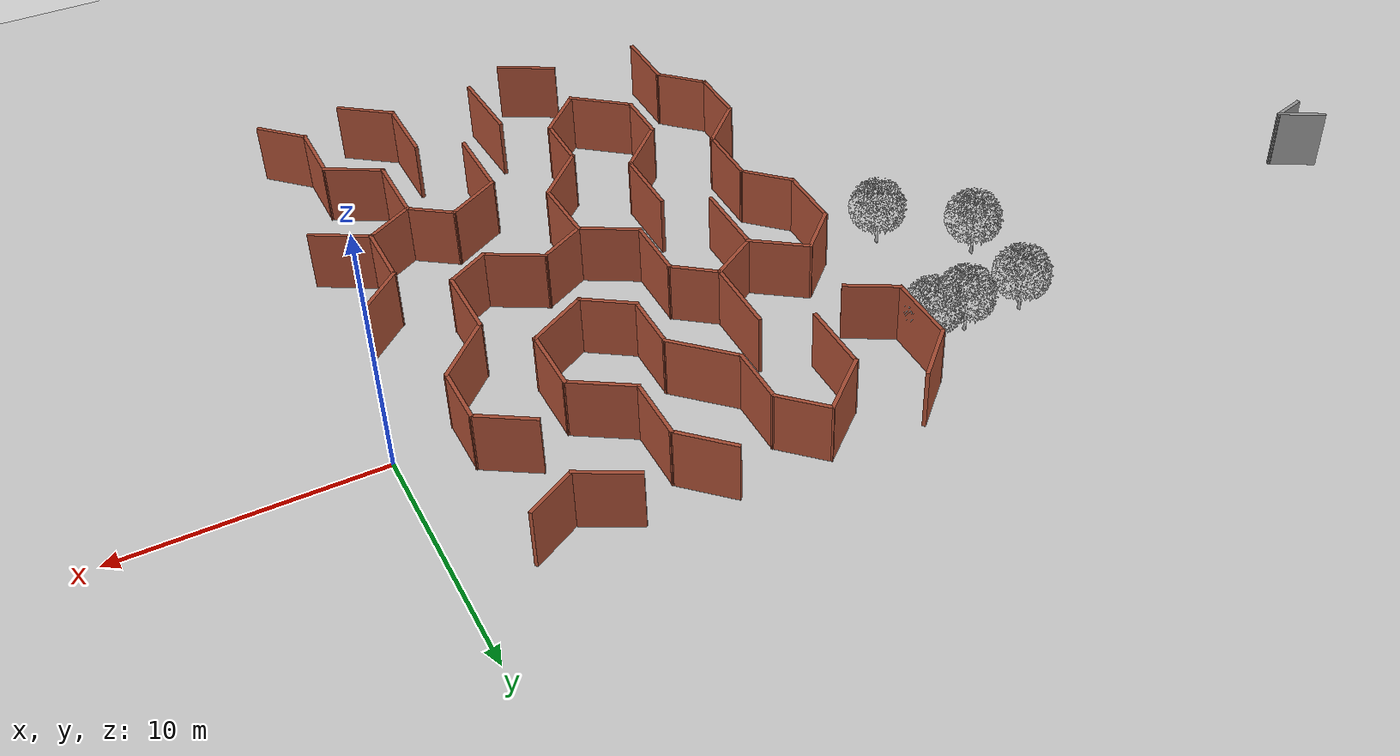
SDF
<sdf version="1.6">
 <world name="default">
  <model name="maze_rect_3">
   <pose>4e-06 -9.9e-05 0 0 -0 1.57001</pose>
   <link name="Wall_397">
    <collision name="Wall_397_Collision">
     <geometry><box><size>2.42901 0.15 2.5</size></box></geometry>
     <pose>0 0 1.25 0 -0 0</pose>
    </collision>
    <visual name="Wall_397_Visual">
     <pose>0 0 1.25 0 -0 0</pose>
     <geometry><box><size>2.42901 0.15 2.5</size></box></geometry>
     <material>
      <script><uri>file://media/materials/scripts/gazebo.material</uri><name>Gazebo/Bricks</name></script>
      <ambient>1 1 1 1</ambient>
     </material>
     <meta><layer>0</layer></meta>
    </visual>
    <pose>2.16247 3.50043 0 0 -0 -2.14324</pose>
   </link>
   <link name="Wall_408">
    <collision name="Wall_408_Collision">
     <geometry><box><size>2.25 0.15 2.5</size></box></geometry>
     <pose>0 0 1.25 0 -0 0</pose>
    </collision>
    <visual name="Wall_408_Visual">
     <pose>0 0 1.25 0 -0 0</pose>
     <geometry><box><size>2.25 0.15 2.5</size></box></geometry>
     <material>
      <script><uri>file://media/materials/scripts/gazebo.material</uri><name>Gazebo/Bricks</name></script>
      <ambient>1 1 1 1</ambient>
     </material>
     <meta><layer>0</layer></meta>
    </visual>
    <pose>6.22436 12.7556 0 0 -0 -2.35619</pose>
   </link>
   <link name="Wall_409">
    <collision name="Wall_409_Collision">
     <geometry><box><size>2.5 0.15 2.5</size></box></geometry>
     <pose>0 0 1.25 0 -0 0</pose>
    </collision>
    <visual name="Wall_409_Visual">
     <pose>0 0 1.25 0 -0 0</pose>
     <geometry><box><size>2.5 0.15 2.5</size></box></geometry>
     <material>
      <script><uri>file://media/materials/scripts/gazebo.material</uri><name>Gazebo/Bricks</name></script>
      <ambient>1 1 1 1</ambient>
     </material>
     <meta><layer>0</layer></meta>
    </visual>
    <pose>4.3069 12.0131 0 0 -0 3.14159</pose>
   </link>
   <link name="Wall_410">
    <collision name="Wall_410_Collision">
     <geometry><box><size>3 0.15 2.5</size></box></geometry>
     <pose>0 0 1.25 0 -0 0</pose>
    </collision>
    <visual name="Wall_410_Visual">
     <pose>0 0 1.25 0 -0 0</pose>
     <geometry><box><size>3 0.15 2.5</size></box></geometry>
     <material>
      <script><uri>file://media/materials/scripts/gazebo.material</uri><name>Gazebo/Bricks</name></script>
      <ambient>1 1 1 1</ambient>
     </material>
     <meta><layer>0</layer></meta>
    </visual>
    <pose>2.12428 11.0055 0 0 -0 -2.35619</pose>
   </link>
   <link name="Wall_411">
    <collision name="Wall_411_Collision">
     <geometry><box><size>2.5 0.15 2.5</size></box></geometry>
     <pose>0 0 1.25 0 -0 0</pose>
    </collision>
    <visual name="Wall_411_Visual">
     <pose>0 0 1.25 0 -0 0</pose>
     <geometry><box><size>2.5 0.15 2.5</size></box></geometry>
     <material>
      <script><uri>file://media/materials/scripts/gazebo.material</uri><name>Gazebo/Bricks</name></script>
      <ambient>1 1 1 1</ambient>
     </material>
     <meta><layer>0</layer></meta>
    </visual>
    <pose>-0.058351 9.99786 0 0 -0 3.14159</pose>
   </link>
   <link name="Wall_412">
    <collision name="Wall_412_Collision">
     <geometry><box><size>2.274 0.15 2.5</size></box></geometry>
     <pose>0 0 1.25 0 -0 0</pose>
    </collision>
    <visual name="Wall_412_Visual">
     <pose>0 0 1.25 0 -0 0</pose>
     <geometry><box><size>2.274 0.15 2.5</size></box></geometry>
     <material>
      <script><uri>file://media/materials/scripts/gazebo.material</uri><name>Gazebo/Bricks</name></script>
      <ambient>1 1 1 1</ambient>
     </material>
     <meta><layer>0</layer></meta>
    </visual>
    <pose>-1.83906 9.12552 0 0 -0 -2.17772</pose>
   </link>
   <link name="Wall_413">
    <collision name="Wall_413_Collision">
     <geometry><box><size>2.75 0.15 2.5</size></box></geometry>
     <pose>0 0 1.25 0 -0 0</pose>
    </collision>
    <visual name="Wall_413_Visual">
     <pose>0 0 1.25 0 -0 0</pose>
     <geometry><box><size>2.75 0.15 2.5</size></box></geometry>
     <material>
      <script><uri>file://media/materials/scripts/gazebo.material</uri><name>Gazebo/Bricks</name></script>
      <ambient>1 1 1 1</ambient>
     </material>
     <meta><layer>0</layer></meta>
    </visual>
    <pose>-1.79476 7.12736 0 0 -0 -1.0472</pose>
   </link>
   <link name="Wall_414">
    <collision name="Wall_414_Collision">
     <geometry><box><size>2.75 0.15 2.5</size></box></geometry>
     <pose>0 0 1.25 0 -0 0</pose>
    </collision>
    <visual name="Wall_414_Visual">
     <pose>0 0 1.25 0 -0 0</pose>
     <geometry><box><size>2.75 0.15 2.5</size></box></geometry>
     <material>
      <script><uri>file://media/materials/scripts/gazebo.material</uri><name>Gazebo/Bricks</name></script>
      <ambient>1 1 1 1</ambient>
     </material>
     <meta><layer>0</layer></meta>
    </visual>
    <pose>0.155242 6.00152 0 0 -0 0</pose>
   </link>
   <link name="Wall_415">
    <collision name="Wall_415_Collision">
     <geometry><box><size>2.72023 0.15 2.5</size></box></geometry>
     <pose>0 0 1.25 0 -0 0</pose>
    </collision>
    <visual name="Wall_415_Visual">
     <pose>0 0 1.25 0 -0 0</pose>
     <geometry><box><size>2.72023 0.15 2.5</size></box></geometry>
     <material>
      <script><uri>file://media/materials/scripts/gazebo.material</uri><name>Gazebo/Bricks</name></script>
      <ambient>1 1 1 1</ambient>
     </material>
     <meta><layer>0</layer></meta>
    </visual>
    <pose>2.15341 7.08045 0 0 -0 0.996468</pose>
   </link>
   <link name="Wall_416">
    <collision name="Wall_416_Collision">
     <geometry><box><size>2.75 0.15 2.5</size></box></geometry>
     <pose>0 0 1.25 0 -0 0</pose>
    </collision>
    <visual name="Wall_416_Visual">
     <pose>0 0 1.25 0 -0 0</pose>
     <geometry><box><size>2.75 0.15 2.5</size></box></geometry>
     <material>
      <script><uri>file://media/materials/scripts/gazebo.material</uri><name>Gazebo/Bricks</name></script>
      <ambient>1 1 1 1</ambient>
     </material>
     <meta><layer>0</layer></meta>
    </visual>
    <pose>4.15157 8.15938 0 0 -0 0</pose>
   </link>
   <link name="Wall_417">
    <collision name="Wall_417_Collision">
     <geometry><box><size>2.5 0.15 2.5</size></box></geometry>
     <pose>0 0 1.25 0 -0 0</pose>
    </collision>
    <visual name="Wall_417_Visual">
     <pose>0 0 1.25 0 -0 0</pose>
     <geometry><box><size>2.5 0.15 2.5</size></box></geometry>
     <material>
      <script><uri>file://media/materials/scripts/gazebo.material</uri><name>Gazebo/Bricks</name></script>
      <ambient>1 1 1 1</ambient>
     </material>
     <meta><layer>0</layer></meta>
    </visual>
    <pose>6.28242 8.99023 0 0 -0 0.785398</pose>
   </link>
   <link name="Wall_428">
    <collision name="Wall_428_Collision">
     <geometry><box><size>3 0.15 2.5</size></box></geometry>
     <pose>0 0 1.25 0 -0 0</pose>
    </collision>
    <visual name="Wall_428_Visual">
     <pose>0 0 1.25 0 -0 0</pose>
     <geometry><box><size>3 0.15 2.5</size></box></geometry>
     <material>
      <script><uri>file://media/materials/scripts/gazebo.material</uri><name>Gazebo/Bricks</name></script>
      <ambient>1 1 1 1</ambient>
     </material>
     <meta><layer>0</layer></meta>
    </visual>
    <pose>3.83443 15.4086 0 0 -0 0</pose>
   </link>
   <link name="Wall_429">
    <collision name="Wall_429_Collision">
     <geometry><box><size>2.7123 0.15 2.5</size></box></geometry>
     <pose>0 0 1.25 0 -0 0</pose>
    </collision>
    <visual name="Wall_429_Visual">
     <pose>0 0 1.25 0 -0 0</pose>
     <geometry><box><size>2.7123 0.15 2.5</size></box></geometry>
     <material>
      <script><uri>file://media/materials/scripts/gazebo.material</uri><name>Gazebo/Bricks</name></script>
      <ambient>1 1 1 1</ambient>
     </material>
     <meta><layer>0</layer></meta>
    </visual>
    <pose>6.11313 14.4533 0 0 -0 -0.841487</pose>
   </link>
   <link name="Wall_488">
    <collision name="Wall_488_Collision">
     <geometry><box><size>2.25 0.15 2.5</size></box></geometry>
     <pose>0 0 1.25 0 -0 0</pose>
    </collision>
    <visual name="Wall_488_Visual">
     <pose>0 0 1.25 0 -0 0</pose>
     <geometry><box><size>2.25 0.15 2.5</size></box></geometry>
     <material>
      <script><uri>file://media/materials/scripts/gazebo.material</uri><name>Gazebo/Bricks</name></script>
      <ambient>1 1 1 1</ambient>
     </material>
     <meta><layer>0</layer></meta>
    </visual>
    <pose>-18.1705 1.86878 0 0 -0 0.785398</pose>
   </link>
   <link name="Wall_489">
    <collision name="Wall_489_Collision">
     <geometry><box><size>2.75 0.15 2.5</size></box></geometry>
     <pose>0 0 1.25 0 -0 0</pose>
    </collision>
    <visual name="Wall_489_Visual">
     <pose>0 0 1.25 0 -0 0</pose>
     <geometry><box><size>2.75 0.15 2.5</size></box></geometry>
     <material>
      <script><uri>file://media/materials/scripts/gazebo.material</uri><name>Gazebo/Bricks</name></script>
      <ambient>1 1 1 1</ambient>
     </material>
     <meta><layer>0</layer></meta>
    </visual>
    <pose>-16.1281 2.61124 0 0 -0 0</pose>
   </link>
   <link name="Wall_490">
    <collision name="Wall_490_Collision">
     <geometry><box><size>2.5 0.15 2.5</size></box></geometry>
     <pose>0 0 1.25 0 -0 0</pose>
    </collision>
    <visual name="Wall_490_Visual">
     <pose>0 0 1.25 0 -0 0</pose>
     <geometry><box><size>2.5 0.15 2.5</size></box></geometry>
     <material>
      <script><uri>file://media/materials/scripts/gazebo.material</uri><name>Gazebo/Bricks</name></script>
      <ambient>1 1 1 1</ambient>
     </material>
     <meta><layer>0</layer></meta>
    </visual>
    <pose>-14.2406 3.62882 0 0 -0 1.0472</pose>
   </link>
   <link name="Wall_491">
    <collision name="Wall_491_Collision">
     <geometry><box><size>3.09032 0.15 2.5</size></box></geometry>
     <pose>0 0 1.25 0 -0 0</pose>
    </collision>
    <visual name="Wall_491_Visual">
     <pose>0 0 1.25 0 -0 0</pose>
     <geometry><box><size>3.09032 0.15 2.5</size></box></geometry>
     <material>
      <script><uri>file://media/materials/scripts/gazebo.material</uri><name>Gazebo/Bricks</name></script>
      <ambient>1 1 1 1</ambient>
     </material>
     <meta><layer>0</layer></meta>
    </visual>
    <pose>-12.1829 4.63645 0 0 -0 -0.00677</pose>
   </link>
   <link name="Wall_492">
    <collision name="Wall_492_Collision">
     <geometry><box><size>2.25 0.15 2.5</size></box></geometry>
     <pose>0 0 1.25 0 -0 0</pose>
    </collision>
    <visual name="Wall_492_Visual">
     <pose>0 0 1.25 0 -0 0</pose>
     <geometry><box><size>2.25 0.15 2.5</size></box></geometry>
     <material>
      <script><uri>file://media/materials/scripts/gazebo.material</uri><name>Gazebo/Bricks</name></script>
      <ambient>1 1 1 1</ambient>
     </material>
     <meta><layer>0</layer></meta>
    </visual>
    <pose>-10.1878 3.71717 0 0 -0 -1.0472</pose>
   </link>
   <link name="Wall_493">
    <collision name="Wall_493_Collision">
     <geometry><box><size>2.75 0.15 2.5</size></box></geometry>
     <pose>0 0 1.25 0 -0 0</pose>
    </collision>
    <visual name="Wall_493_Visual">
     <pose>0 0 1.25 0 -0 0</pose>
     <geometry><box><size>2.75 0.15 2.5</size></box></geometry>
     <material>
      <script><uri>file://media/materials/scripts/gazebo.material</uri><name>Gazebo/Bricks</name></script>
      <ambient>1 1 1 1</ambient>
     </material>
     <meta><layer>0</layer></meta>
    </visual>
    <pose>-8.36282 2.80784 0 0 -0 0</pose>
   </link>
   <link name="Wall_494">
    <collision name="Wall_494_Collision">
     <geometry><box><size>2.26522 0.15 2.5</size></box></geometry>
     <pose>0 0 1.25 0 -0 0</pose>
    </collision>
    <visual name="Wall_494_Visual">
     <pose>0 0 1.25 0 -0 0</pose>
     <geometry><box><size>2.26522 0.15 2.5</size></box></geometry>
     <material>
      <script><uri>file://media/materials/scripts/gazebo.material</uri><name>Gazebo/Bricks</name></script>
      <ambient>1 1 1 1</ambient>
     </material>
     <meta><layer>0</layer></meta>
    </visual>
    <pose>-6.35539 2.02165 0 0 -0 -0.838084</pose>
   </link>
   <link name="Wall_498">
    <collision name="Wall_498_Collision">
     <geometry><box><size>2.52361 0.15 2.5</size></box></geometry>
     <pose>0 0 1.25 0 -0 0</pose>
    </collision>
    <visual name="Wall_498_Visual">
     <pose>0 0 1.25 0 -0 0</pose>
     <geometry><box><size>2.52361 0.15 2.5</size></box></geometry>
     <material>
      <script><uri>file://media/materials/scripts/gazebo.material</uri><name>Gazebo/Bricks</name></script>
      <ambient>1 1 1 1</ambient>
     </material>
     <meta><layer>0</layer></meta>
    </visual>
    <pose>-10.2689 1.78745 0 0 -0 1.03485</pose>
   </link>
   <link name="Wall_508">
    <collision name="Wall_508_Collision">
     <geometry><box><size>3.25 0.15 2.5</size></box></geometry>
     <pose>0 0 1.25 0 -0 0</pose>
    </collision>
    <visual name="Wall_508_Visual">
     <pose>0 0 1.25 0 -0 0</pose>
     <geometry><box><size>3.25 0.15 2.5</size></box></geometry>
     <material>
      <script><uri>file://media/materials/scripts/gazebo.material</uri><name>Gazebo/Bricks</name></script>
      <ambient>1 1 1 1</ambient>
     </material>
     <meta><layer>0</layer></meta>
    </visual>
    <pose>-4.18738 15.3235 0 0 -0 0</pose>
   </link>
   <link name="Wall_510">
    <collision name="Wall_510_Collision">
     <geometry><box><size>3.25 0.15 2.5</size></box></geometry>
     <pose>0 0 1.25 0 -0 0</pose>
    </collision>
    <visual name="Wall_510_Visual">
     <pose>0 0 1.25 0 -0 0</pose>
     <geometry><box><size>3.25 0.15 2.5</size></box></geometry>
     <material>
      <script><uri>file://media/materials/scripts/gazebo.material</uri><name>Gazebo/Bricks</name></script>
      <ambient>1 1 1 1</ambient>
     </material>
     <meta><layer>0</layer></meta>
    </visual>
    <pose>0.103697 13.5095 0 0 -0 3.14159</pose>
   </link>
   <link name="Wall_512">
    <collision name="Wall_512_Collision">
     <geometry><box><size>3 0.15 2.5</size></box></geometry>
     <pose>0 0 1.25 0 -0 0</pose>
    </collision>
    <visual name="Wall_512_Visual">
     <pose>0 0 1.25 0 -0 0</pose>
     <geometry><box><size>3 0.15 2.5</size></box></geometry>
     <material>
      <script><uri>file://media/materials/scripts/gazebo.material</uri><name>Gazebo/Bricks</name></script>
      <ambient>1 1 1 1</ambient>
     </material>
     <meta><layer>0</layer></meta>
    </visual>
    <pose>-7.95217 13.5465 0 0 -0 3.14159</pose>
   </link>
   <link name="Wall_513">
    <collision name="Wall_513_Collision">
     <geometry><box><size>2.75 0.15 2.5</size></box></geometry>
     <pose>0 0 1.25 0 -0 0</pose>
    </collision>
    <visual name="Wall_513_Visual">
     <pose>0 0 1.25 0 -0 0</pose>
     <geometry><box><size>2.75 0.15 2.5</size></box></geometry>
     <material>
      <script><uri>file://media/materials/scripts/gazebo.material</uri><name>Gazebo/Bricks</name></script>
      <ambient>1 1 1 1</ambient>
     </material>
     <meta><layer>0</layer></meta>
    </visual>
    <pose>-10.2964 14.4658 0 0 -0 2.35619</pose>
   </link>
   <link name="Wall_514">
    <collision name="Wall_514_Collision">
     <geometry><box><size>2.25 0.15 2.5</size></box></geometry>
     <pose>0 0 1.25 0 -0 0</pose>
    </collision>
    <visual name="Wall_514_Visual">
     <pose>0 0 1.25 0 -0 0</pose>
     <geometry><box><size>2.25 0.15 2.5</size></box></geometry>
     <material>
      <script><uri>file://media/materials/scripts/gazebo.material</uri><name>Gazebo/Bricks</name></script>
      <ambient>1 1 1 1</ambient>
     </material>
     <meta><layer>0</layer></meta>
    </visual>
    <pose>-12.2656 15.385 0 0 -0 3.14159</pose>
   </link>
   <link name="Wall_515">
    <collision name="Wall_515_Collision">
     <geometry><box><size>2.75234 0.15 2.5</size></box></geometry>
     <pose>0 0 1.25 0 -0 0</pose>
    </collision>
    <visual name="Wall_515_Visual">
     <pose>0 0 1.25 0 -0 0</pose>
     <geometry><box><size>2.75234 0.15 2.5</size></box></geometry>
     <material>
      <script><uri>file://media/materials/scripts/gazebo.material</uri><name>Gazebo/Bricks</name></script>
      <ambient>1 1 1 1</ambient>
     </material>
     <meta><layer>0</layer></meta>
    </visual>
    <pose>-14.1389 14.3774 0 0 -0 -2.25583</pose>
   </link>
   <link name="Wall_516">
    <collision name="Wall_516_Collision">
     <geometry><box><size>2.5 0.15 2.5</size></box></geometry>
     <pose>0 0 1.25 0 -0 0</pose>
    </collision>
    <visual name="Wall_516_Visual">
     <pose>0 0 1.25 0 -0 0</pose>
     <geometry><box><size>2.5 0.15 2.5</size></box></geometry>
     <material>
      <script><uri>file://media/materials/scripts/gazebo.material</uri><name>Gazebo/Bricks</name></script>
      <ambient>1 1 1 1</ambient>
     </material>
     <meta><layer>0</layer></meta>
    </visual>
    <pose>-14.1313 12.5389 0 0 -0 -0.785398</pose>
   </link>
   <link name="Wall_517">
    <collision name="Wall_517_Collision">
     <geometry><box><size>2.46958 0.15 2.5</size></box></geometry>
     <pose>0 0 1.25 0 -0 0</pose>
    </collision>
    <visual name="Wall_517_Visual">
     <pose>0 0 1.25 0 -0 0</pose>
     <geometry><box><size>2.46958 0.15 2.5</size></box></geometry>
     <material>
      <script><uri>file://media/materials/scripts/gazebo.material</uri><name>Gazebo/Bricks</name></script>
      <ambient>1 1 1 1</ambient>
     </material>
     <meta><layer>0</layer></meta>
    </visual>
    <pose>-12.1254 11.7081 0 0 -0 0</pose>
   </link>
   <link name="Wall_518">
    <collision name="Wall_518_Collision">
     <geometry><box><size>2.75 0.15 2.5</size></box></geometry>
     <pose>0 0 1.25 0 -0 0</pose>
    </collision>
    <visual name="Wall_518_Visual">
     <pose>0 0 1.25 0 -0 0</pose>
     <geometry><box><size>2.75 0.15 2.5</size></box></geometry>
     <material>
      <script><uri>file://media/materials/scripts/gazebo.material</uri><name>Gazebo/Bricks</name></script>
      <ambient>1 1 1 1</ambient>
     </material>
     <meta><layer>0</layer></meta>
    </visual>
    <pose>-10.0464 10.7888 0 0 -0 -0.785398</pose>
   </link>
   <link name="Wall_519">
    <collision name="Wall_519_Collision">
     <geometry><box><size>2.88225 0.15 2.5</size></box></geometry>
     <pose>0 0 1.25 0 -0 0</pose>
    </collision>
    <visual name="Wall_519_Visual">
     <pose>0 0 1.25 0 -0 0</pose>
     <geometry><box><size>2.88225 0.15 2.5</size></box></geometry>
     <material>
      <script><uri>file://media/materials/scripts/gazebo.material</uri><name>Gazebo/Bricks</name></script>
      <ambient>1 1 1 1</ambient>
     </material>
     <meta><layer>0</layer></meta>
    </visual>
    <pose>-7.76197 9.91991 0 0 -0 0.036844</pose>
   </link>
   <link name="Wall_64">
    <collision name="Wall_64_Collision">
     <geometry><box><size>2.75 0.15 2.5</size></box></geometry>
     <pose>0 0 1.25 0 -0 0</pose>
    </collision>
    <visual name="Wall_64_Visual">
     <pose>0 0 1.25 0 -0 0</pose>
     <geometry><box><size>2.75 0.15 2.5</size></box></geometry>
     <material>
      <script><uri>file://media/materials/scripts/gazebo.material</uri><name>Gazebo/Bricks</name></script>
      <ambient>1 1 1 1</ambient>
     </material>
     <meta><layer>0</layer></meta>
    </visual>
    <pose>-16.198 17.4216 0 0 -0 0</pose>
   </link>
   <link name="Wall_65">
    <collision name="Wall_65_Collision">
     <geometry><box><size>2.25 0.15 2.5</size></box></geometry>
     <pose>0 0 1.25 0 -0 0</pose>
    </collision>
    <visual name="Wall_65_Visual">
     <pose>0 0 1.25 0 -0 0</pose>
     <geometry><box><size>2.25 0.15 2.5</size></box></geometry>
     <material>
      <script><uri>file://media/materials/scripts/gazebo.material</uri><name>Gazebo/Bricks</name></script>
      <ambient>1 1 1 1</ambient>
     </material>
     <meta><layer>0</layer></meta>
    </visual>
    <pose>-14.1556 18.1641 0 0 -0 0.785398</pose>
   </link>
   <link name="Wall_66">
    <collision name="Wall_66_Collision">
     <geometry><box><size>2.5 0.15 2.5</size></box></geometry>
     <pose>0 0 1.25 0 -0 0</pose>
    </collision>
    <visual name="Wall_66_Visual">
     <pose>0 0 1.25 0 -0 0</pose>
     <geometry><box><size>2.5 0.15 2.5</size></box></geometry>
     <material>
      <script><uri>file://media/materials/scripts/gazebo.material</uri><name>Gazebo/Bricks</name></script>
      <ambient>1 1 1 1</ambient>
     </material>
     <meta><layer>0</layer></meta>
    </visual>
    <pose>-12.2381 18.9065 0 0 -0 0</pose>
   </link>
   <link name="Wall_665">
    <collision name="Wall_665_Collision">
     <geometry><box><size>2.5 0.15 2.5</size></box></geometry>
     <pose>0 0 1.25 0 -0 0</pose>
    </collision>
    <visual name="Wall_665_Visual">
     <pose>0 0 1.25 0 -0 0</pose>
     <geometry><box><size>2.5 0.15 2.5</size></box></geometry>
     <material>
      <script><uri>file://media/materials/scripts/gazebo.material</uri><name>Gazebo/Bricks</name></script>
      <ambient>1 1 1 1</ambient>
     </material>
     <meta><layer>0</layer></meta>
    </visual>
    <pose>-18.0935 12.6192 0 0 -0 -2.0944</pose>
   </link>
   <link name="Wall_67">
    <collision name="Wall_67_Collision">
     <geometry><box><size>2.5 0.15 2.5</size></box></geometry>
     <pose>0 0 1.25 0 -0 0</pose>
    </collision>
    <visual name="Wall_67_Visual">
     <pose>0 0 1.25 0 -0 0</pose>
     <geometry><box><size>2.5 0.15 2.5</size></box></geometry>
     <material>
      <script><uri>file://media/materials/scripts/gazebo.material</uri><name>Gazebo/Bricks</name></script>
      <ambient>1 1 1 1</ambient>
     </material>
     <meta><layer>0</layer></meta>
    </visual>
    <pose>-10.2323 18.0757 0 0 -0 -0.785398</pose>
   </link>
   <link name="Wall_678">
    <collision name="Wall_678_Collision">
     <geometry><box><size>3 0.15 2.5</size></box></geometry>
     <pose>0 0 1.25 0 -0 0</pose>
    </collision>
    <visual name="Wall_678_Visual">
     <pose>0 0 1.25 0 -0 0</pose>
     <geometry><box><size>3 0.15 2.5</size></box></geometry>
     <material>
      <script><uri>file://media/materials/scripts/gazebo.material</uri><name>Gazebo/Bricks</name></script>
      <ambient>1 1 1 1</ambient>
     </material>
     <meta><layer>0</layer></meta>
    </visual>
    <pose>-16.0173 6.36975 0 0 -0 3.14159</pose>
   </link>
   <link name="Wall_68">
    <collision name="Wall_68_Collision">
     <geometry><box><size>2.75 0.15 2.5</size></box></geometry>
     <pose>0 0 1.25 0 -0 0</pose>
    </collision>
    <visual name="Wall_68_Visual">
     <pose>0 0 1.25 0 -0 0</pose>
     <geometry><box><size>2.75 0.15 2.5</size></box></geometry>
     <material>
      <script><uri>file://media/materials/scripts/gazebo.material</uri><name>Gazebo/Bricks</name></script>
      <ambient>1 1 1 1</ambient>
     </material>
     <meta><layer>0</layer></meta>
    </visual>
    <pose>-8.10141 17.2448 0 0 -0 0</pose>
   </link>
   <link name="Wall_683">
    <collision name="Wall_683_Collision">
     <geometry><box><size>3.33973 0.15 2.5</size></box></geometry>
     <pose>0 0 1.25 0 -0 0</pose>
    </collision>
    <visual name="Wall_683_Visual">
     <pose>0 0 1.25 0 -0 0</pose>
     <geometry><box><size>3.33973 0.15 2.5</size></box></geometry>
     <material>
      <script><uri>file://media/materials/scripts/gazebo.material</uri><name>Gazebo/Bricks</name></script>
      <ambient>1 1 1 1</ambient>
     </material>
     <meta><layer>0</layer></meta>
    </visual>
    <pose>-16.1587 9.95606 0 0 -0 -3.10005</pose>
   </link>
   <link name="Wall_688">
    <collision name="Wall_688_Collision">
     <geometry><box><size>2.49477 0.15 2.5</size></box></geometry>
     <pose>0 0 1.25 0 -0 0</pose>
    </collision>
    <visual name="Wall_688_Visual">
     <pose>0 0 1.25 0 -0 0</pose>
     <geometry><box><size>2.49477 0.15 2.5</size></box></geometry>
     <material>
      <script><uri>file://media/materials/scripts/gazebo.material</uri><name>Gazebo/Bricks</name></script>
      <ambient>1 1 1 1</ambient>
     </material>
     <meta><layer>0</layer></meta>
    </visual>
    <pose>-18.1534 5.43764 0 0 -0 0.919089</pose>
   </link>
   <link name="Wall_69">
    <collision name="Wall_69_Collision">
     <geometry><box><size>2.25 0.15 2.5</size></box></geometry>
     <pose>0 0 1.25 0 -0 0</pose>
    </collision>
    <visual name="Wall_69_Visual">
     <pose>0 0 1.25 0 -0 0</pose>
     <geometry><box><size>2.25 0.15 2.5</size></box></geometry>
     <material>
      <script><uri>file://media/materials/scripts/gazebo.material</uri><name>Gazebo/Bricks</name></script>
      <ambient>1 1 1 1</ambient>
     </material>
     <meta><layer>0</layer></meta>
    </visual>
    <pose>-6.05895 17.9873 0 0 -0 0.785398</pose>
   </link>
   <link name="Wall_699">
    <collision name="Wall_699_Collision">
     <geometry><box><size>3.25 0.15 2.5</size></box></geometry>
     <pose>0 0 1.25 0 -0 0</pose>
    </collision>
    <visual name="Wall_699_Visual">
     <pose>0 0 1.25 0 -0 0</pose>
     <geometry><box><size>3.25 0.15 2.5</size></box></geometry>
     <material>
      <script><uri>file://media/materials/scripts/gazebo.material</uri><name>Gazebo/Bricks</name></script>
      <ambient>1 1 1 1</ambient>
     </material>
     <meta><layer>0</layer></meta>
    </visual>
    <pose>-12.3342 8.17414 0 0 -0 0</pose>
   </link>
   <link name="Wall_70">
    <collision name="Wall_70_Collision">
     <geometry><box><size>2.75 0.15 2.5</size></box></geometry>
     <pose>0 0 1.25 0 -0 0</pose>
    </collision>
    <visual name="Wall_70_Visual">
     <pose>0 0 1.25 0 -0 0</pose>
     <geometry><box><size>2.75 0.15 2.5</size></box></geometry>
     <material>
      <script><uri>file://media/materials/scripts/gazebo.material</uri><name>Gazebo/Bricks</name></script>
      <ambient>1 1 1 1</ambient>
     </material>
     <meta><layer>0</layer></meta>
    </visual>
    <pose>-4.01648 18.7298 0 0 -0 0</pose>
   </link>
   <link name="Wall_700">
    <collision name="Wall_700_Collision">
     <geometry><box><size>2.5 0.15 2.5</size></box></geometry>
     <pose>0 0 1.25 0 -0 0</pose>
    </collision>
    <visual name="Wall_700_Visual">
     <pose>0 0 1.25 0 -0 0</pose>
     <geometry><box><size>2.5 0.15 2.5</size></box></geometry>
     <material>
      <script><uri>file://media/materials/scripts/gazebo.material</uri><name>Gazebo/Bricks</name></script>
      <ambient>1 1 1 1</ambient>
     </material>
     <meta><layer>0</layer></meta>
    </visual>
    <pose>-10.1967 7.15656 0 0 -0 -1.0472</pose>
   </link>
   <link name="Wall_701">
    <collision name="Wall_701_Collision">
     <geometry><box><size>2.02232 0.15 2.5</size></box></geometry>
     <pose>0 0 1.25 0 -0 0</pose>
    </collision>
    <visual name="Wall_701_Visual">
     <pose>0 0 1.25 0 -0 0</pose>
     <geometry><box><size>2.02232 0.15 2.5</size></box></geometry>
     <material>
      <script><uri>file://media/materials/scripts/gazebo.material</uri><name>Gazebo/Bricks</name></script>
      <ambient>1 1 1 1</ambient>
     </material>
     <meta><layer>0</layer></meta>
    </visual>
    <pose>-10.161 5.38274 0 0 -0 -2.20116</pose>
   </link>
   <link name="Wall_71">
    <collision name="Wall_71_Collision">
     <geometry><box><size>2.25 0.15 2.5</size></box></geometry>
     <pose>0 0 1.25 0 -0 0</pose>
    </collision>
    <visual name="Wall_71_Visual">
     <pose>0 0 1.25 0 -0 0</pose>
     <geometry><box><size>2.25 0.15 2.5</size></box></geometry>
     <material>
      <script><uri>file://media/materials/scripts/gazebo.material</uri><name>Gazebo/Bricks</name></script>
      <ambient>1 1 1 1</ambient>
     </material>
     <meta><layer>0</layer></meta>
    </visual>
    <pose>-1.97402 17.9873 0 0 -0 -0.785398</pose>
   </link>
   <link name="Wall_72">
    <collision name="Wall_72_Collision">
     <geometry><box><size>2.53072 0.15 2.5</size></box></geometry>
     <pose>0 0 1.25 0 -0 0</pose>
    </collision>
    <visual name="Wall_72_Visual">
     <pose>0 0 1.25 0 -0 0</pose>
     <geometry><box><size>2.53072 0.15 2.5</size></box></geometry>
     <material>
      <script><uri>file://media/materials/scripts/gazebo.material</uri><name>Gazebo/Bricks</name></script>
      <ambient>1 1 1 1</ambient>
     </material>
     <meta><layer>0</layer></meta>
    </visual>
    <pose>-1.93447 16.2842 0 0 -0 -2.20248</pose>
   </link>
   <link name="Wall_73">
    <collision name="Wall_73_Collision">
     <geometry><box><size>2.32012 0.15 2.5</size></box></geometry>
     <pose>0 0 1.25 0 -0 0</pose>
    </collision>
    <visual name="Wall_73_Visual">
     <pose>0 0 1.25 0 -0 0</pose>
     <geometry><box><size>2.32012 0.15 2.5</size></box></geometry>
     <material>
      <script><uri>file://media/materials/scripts/gazebo.material</uri><name>Gazebo/Bricks</name></script>
      <ambient>1 1 1 1</ambient>
     </material>
     <meta><layer>0</layer></meta>
    </visual>
    <pose>-2.04184 14.4165 0 0 -0 -0.989804</pose>
   </link>
   <link name="Wall_74">
    <collision name="Wall_74_Collision">
     <geometry><box><size>2.05893 0.15 2.5</size></box></geometry>
     <pose>0 0 1.25 0 -0 0</pose>
    </collision>
    <visual name="Wall_74_Visual">
     <pose>0 0 1.25 0 -0 0</pose>
     <geometry><box><size>2.05893 0.15 2.5</size></box></geometry>
     <material>
      <script><uri>file://media/materials/scripts/gazebo.material</uri><name>Gazebo/Bricks</name></script>
      <ambient>1 1 1 1</ambient>
     </material>
     <meta><layer>0</layer></meta>
    </visual>
    <pose>-2.03404 12.7574 0 0 -0 -2.23417</pose>
   </link>
   <link name="Wall_75">
    <collision name="Wall_75_Collision">
     <geometry><box><size>2.75 0.15 2.5</size></box></geometry>
     <pose>0 0 1.25 0 -0 0</pose>
    </collision>
    <visual name="Wall_75_Visual">
     <pose>0 0 1.25 0 -0 0</pose>
     <geometry><box><size>2.75 0.15 2.5</size></box></geometry>
     <material>
      <script><uri>file://media/materials/scripts/gazebo.material</uri><name>Gazebo/Bricks</name></script>
      <ambient>1 1 1 1</ambient>
     </material>
     <meta><layer>0</layer></meta>
    </visual>
    <pose>-3.92178 12.0054 0 0 -0 3.14159</pose>
   </link>
   <link name="Wall_76">
    <collision name="Wall_76_Collision">
     <geometry><box><size>2.50045 0.15 2.5</size></box></geometry>
     <pose>0 0 1.25 0 -0 0</pose>
    </collision>
    <visual name="Wall_76_Visual">
     <pose>0 0 1.25 0 -0 0</pose>
     <geometry><box><size>2.50045 0.15 2.5</size></box></geometry>
     <material>
      <script><uri>file://media/materials/scripts/gazebo.material</uri><name>Gazebo/Bricks</name></script>
      <ambient>1 1 1 1</ambient>
     </material>
     <meta><layer>0</layer></meta>
    </visual>
    <pose>-5.80928 10.9878 0 0 -0 -2.0944</pose>
   </link>
   <link name="Wall_77">
    <collision name="Wall_77_Collision">
     <geometry><box><size>2.17608 0.15 2.5</size></box></geometry>
     <pose>0 0 1.25 0 -0 0</pose>
    </collision>
    <visual name="Wall_77_Visual">
     <pose>0 0 1.25 0 -0 0</pose>
     <geometry><box><size>2.17608 0.15 2.5</size></box></geometry>
     <material>
      <script><uri>file://media/materials/scripts/gazebo.material</uri><name>Gazebo/Bricks</name></script>
      <ambient>1 1 1 1</ambient>
     </material>
     <meta><layer>0</layer></meta>
    </visual>
    <pose>-5.90841 9.08269 0 0 -0 -1.06776</pose>
   </link>
   <link name="Wall_78">
    <collision name="Wall_78_Collision">
     <geometry><box><size>2.5 0.15 2.5</size></box></geometry>
     <pose>0 0 1.25 0 -0 0</pose>
    </collision>
    <visual name="Wall_78_Visual">
     <pose>0 0 1.25 0 -0 0</pose>
     <geometry><box><size>2.5 0.15 2.5</size></box></geometry>
     <material>
      <script><uri>file://media/materials/scripts/gazebo.material</uri><name>Gazebo/Bricks</name></script>
      <ambient>1 1 1 1</ambient>
     </material>
     <meta><layer>0</layer></meta>
    </visual>
    <pose>-6.00754 7.17756 0 0 -0 -2.0944</pose>
   </link>
   <link name="Wall_79">
    <collision name="Wall_79_Collision">
     <geometry><box><size>2 0.15 2.5</size></box></geometry>
     <pose>0 0 1.25 0 -0 0</pose>
    </collision>
    <visual name="Wall_79_Visual">
     <pose>0 0 1.25 0 -0 0</pose>
     <geometry><box><size>2 0.15 2.5</size></box></geometry>
     <material>
      <script><uri>file://media/materials/scripts/gazebo.material</uri><name>Gazebo/Bricks</name></script>
      <ambient>1 1 1 1</ambient>
     </material>
     <meta><layer>0</layer></meta>
    </visual>
    <pose>-6.13254 5.35891 0 0 -0 -1.0472</pose>
   </link>
   <link name="Wall_80">
    <collision name="Wall_80_Collision">
     <geometry><box><size>3 0.15 2.5</size></box></geometry>
     <pose>0 0 1.25 0 -0 0</pose>
    </collision>
    <visual name="Wall_80_Visual">
     <pose>0 0 1.25 0 -0 0</pose>
     <geometry><box><size>3 0.15 2.5</size></box></geometry>
     <material>
      <script><uri>file://media/materials/scripts/gazebo.material</uri><name>Gazebo/Bricks</name></script>
      <ambient>1 1 1 1</ambient>
     </material>
     <meta><layer>0</layer></meta>
    </visual>
    <pose>-4.24504 4.55783 0 0 -0 0</pose>
   </link>
   <link name="Wall_81">
    <collision name="Wall_81_Collision">
     <geometry><box><size>3 0.15 2.5</size></box></geometry>
     <pose>0 0 1.25 0 -0 0</pose>
    </collision>
    <visual name="Wall_81_Visual">
     <pose>0 0 1.25 0 -0 0</pose>
     <geometry><box><size>3 0.15 2.5</size></box></geometry>
     <material>
      <script><uri>file://media/materials/scripts/gazebo.material</uri><name>Gazebo/Bricks</name></script>
      <ambient>1 1 1 1</ambient>
     </material>
     <meta><layer>0</layer></meta>
    </visual>
    <pose>-1.81241 3.55021 0 0 -0 -0.785398</pose>
   </link>
   <link name="Wall_82">
    <collision name="Wall_82_Collision">
     <geometry><box><size>2.5 0.15 2.5</size></box></geometry>
     <pose>0 0 1.25 0 -0 0</pose>
    </collision>
    <visual name="Wall_82_Visual">
     <pose>0 0 1.25 0 -0 0</pose>
     <geometry><box><size>2.5 0.15 2.5</size></box></geometry>
     <material>
      <script><uri>file://media/materials/scripts/gazebo.material</uri><name>Gazebo/Bricks</name></script>
      <ambient>1 1 1 1</ambient>
     </material>
     <meta><layer>0</layer></meta>
    </visual>
    <pose>0.370217 2.54258 0 0 -0 0</pose>
   </link>
   <link name="Wall_94">
    <collision name="Wall_94_Collision">
     <geometry><box><size>2.25 0.15 2.5</size></box></geometry>
     <pose>0 0 1.25 0 -0 0</pose>
    </collision>
    <visual name="Wall_94_Visual">
     <pose>0 0 1.25 0 -0 0</pose>
     <geometry><box><size>2.25 0.15 2.5</size></box></geometry>
     <material>
      <script><uri>file://media/materials/scripts/gazebo.material</uri><name>Gazebo/Bricks</name></script>
      <ambient>1 1 1 1</ambient>
     </material>
     <meta><layer>0</layer></meta>
    </visual>
    <pose>6.14282 3.52461 0 0 -0 2.0944</pose>
   </link>
   <link name="Wall_95">
    <collision name="Wall_95_Collision">
     <geometry><box><size>2.45115 0.15 2.5</size></box></geometry>
     <pose>0 0 1.25 0 -0 0</pose>
    </collision>
    <visual name="Wall_95_Visual">
     <pose>0 0 1.25 0 -0 0</pose>
     <geometry><box><size>2.45115 0.15 2.5</size></box></geometry>
     <material>
      <script><uri>file://media/materials/scripts/gazebo.material</uri><name>Gazebo/Bricks</name></script>
      <ambient>1 1 1 1</ambient>
     </material>
     <meta><layer>0</layer></meta>
    </visual>
    <pose>6.19217 5.45152 0 0 -0 1.06128</pose>
   </link>
   <link name="Wall_97">
    <collision name="Wall_97_Collision">
     <geometry><box><size>2.25 0.15 2.5</size></box></geometry>
     <pose>0 0 1.25 0 -0 0</pose>
    </collision>
    <visual name="Wall_97_Visual">
     <pose>0 0 1.25 0 -0 0</pose>
     <geometry><box><size>2.25 0.15 2.5</size></box></geometry>
     <material>
      <script><uri>file://media/materials/scripts/gazebo.material</uri><name>Gazebo/Bricks</name></script>
      <ambient>1 1 1 1</ambient>
     </material>
     <meta><layer>0</layer></meta>
    </visual>
    <pose>1.95361 18.0488 0 0 -0 1.0472</pose>
   </link>
   <link name="Wall_98">
    <collision name="Wall_98_Collision">
     <geometry><box><size>3 0.15 2.5</size></box></geometry>
     <pose>0 0 1.25 0 -0 0</pose>
    </collision>
    <visual name="Wall_98_Visual">
     <pose>0 0 1.25 0 -0 0</pose>
     <geometry><box><size>3 0.15 2.5</size></box></geometry>
     <material>
      <script><uri>file://media/materials/scripts/gazebo.material</uri><name>Gazebo/Bricks</name></script>
      <ambient>1 1 1 1</ambient>
     </material>
     <meta><layer>0</layer></meta>
    </visual>
    <pose>3.90361 18.9581 0 0 -0 0</pose>
   </link>
   <link name="Wall_99">
    <collision name="Wall_99_Collision">
     <geometry><box><size>2.5 0.15 2.5</size></box></geometry>
     <pose>0 0 1.25 0 -0 0</pose>
    </collision>
    <visual name="Wall_99_Visual">
     <pose>0 0 1.25 0 -0 0</pose>
     <geometry><box><size>2.5 0.15 2.5</size></box></geometry>
     <material>
      <script><uri>file://media/materials/scripts/gazebo.material</uri><name>Gazebo/Bricks</name></script>
      <ambient>1 1 1 1</ambient>
     </material>
     <meta><layer>0</layer></meta>
    </visual>
    <pose>6.15946 18.1272 0 0 -0 -0.785398</pose>
   </link>
   <static>1</static>
  </model>
  <model name="tree2_6">
   <link name="link_0">
    <inertial>
     <mass>1</mass>
     <inertia>
      <ixx>0.166667</ixx>
      <ixy>0</ixy>
      <ixz>0</ixz>
      <iyy>0.166667</iyy>
      <iyz>0</iyz>
      <izz>0.166667</izz>
     </inertia>
    </inertial>
    <pose>-0 -0 0 1.58863 -0.000294 0</pose>
    <visual name="visual">
     <geometry><mesh><uri>model://tree2/Tree.obj</uri><scale>1 1 1</scale></mesh></geometry>
    </visual>
    <collision name="collision">
     <geometry><mesh><uri>model://tree2/Tree.obj</uri><scale>1 1 1</scale></mesh></geometry>
     <surface>
      <friction>
       <ode><mu>1</mu><mu2>1</mu2><fdir1>0 0 0</fdir1><slip1>0</slip1><slip2>0</slip2></ode>
       <torsional>
        <coefficient>1</coefficient>
        <patch_radius>0</patch_radius>
        <surface_radius>0</surface_radius>
        <use_patch_radius>1</use_patch_radius>
        <ode><slip>0</slip></ode>
       </torsional>
      </friction>
      <bounce><restitution_coefficient>0</restitution_coefficient><threshold>1e+06</threshold></bounce>
      <contact>
       <collide_without_contact>0</collide_without_contact>
       <collide_without_contact_bitmask>1</collide_without_contact_bitmask>
       <collide_bitmask>1</collide_bitmask>
       <ode>
        <soft_cfm>0</soft_cfm>
        <soft_erp>0.2</soft_erp>
        <kp>1e+13</kp>
        <kd>1</kd>
        <max_vel>0.01</max_vel>
        <min_depth>0</min_depth>
       </ode>
       <bullet>
        <split_impulse>1</split_impulse>
        <split_impulse_penetration_threshold>-0.01</split_impulse_penetration_threshold>
        <soft_cfm>0</soft_cfm>
        <soft_erp>0.2</soft_erp>
        <kp>1e+13</kp>
        <kd>1</kd>
       </bullet>
      </contact>
     </surface>
    </collision>
   </link>
   <static>1</static>
   <pose>-21.336 -3.00792 0 0 -0 0</pose>
  </model>
  <model name="tree2_7">
   <link name="link_0">
    <inertial>
     <mass>1</mass>
     <inertia>
      <ixx>0.166667</ixx>
      <ixy>0</ixy>
      <ixz>0</ixz>
      <iyy>0.166667</iyy>
      <iyz>0</iyz>
      <izz>0.166667</izz>
     </inertia>
    </inertial>
    <pose>-0 -0 0 1.58863 -0.000294 0</pose>
    <visual name="visual">
     <geometry><mesh><uri>model://tree2/Tree.obj</uri><scale>1 1 1</scale></mesh></geometry>
    </visual>
    <collision name="collision">
     <geometry><mesh><uri>model://tree2/Tree.obj</uri><scale>1 1 1</scale></mesh></geometry>
     <surface>
      <friction>
       <ode><mu>1</mu><mu2>1</mu2><fdir1>0 0 0</fdir1><slip1>0</slip1><slip2>0</slip2></ode>
       <torsional>
        <coefficient>1</coefficient>
        <patch_radius>0</patch_radius>
        <surface_radius>0</surface_radius>
        <use_patch_radius>1</use_patch_radius>
        <ode><slip>0</slip></ode>
       </torsional>
      </friction>
      <bounce><restitution_coefficient>0</restitution_coefficient><threshold>1e+06</threshold></bounce>
      <contact>
       <collide_without_contact>0</collide_without_contact>
       <collide_without_contact_bitmask>1</collide_without_contact_bitmask>
       <collide_bitmask>1</collide_bitmask>
       <ode>
        <soft_cfm>0</soft_cfm>
        <soft_erp>0.2</soft_erp>
        <kp>1e+13</kp>
        <kd>1</kd>
        <max_vel>0.01</max_vel>
        <min_depth>0</min_depth>
       </ode>
       <bullet>
        <split_impulse>1</split_impulse>
        <split_impulse_penetration_threshold>-0.01</split_impulse_penetration_threshold>
        <soft_cfm>0</soft_cfm>
        <soft_erp>0.2</soft_erp>
        <kp>1e+13</kp>
        <kd>1</kd>
       </bullet>
      </contact>
     </surface>
    </collision>
   </link>
   <static>1</static>
   <pose>-24.2922 -0.619116 0 0 -0 0</pose>
  </model>
  <model name="tree2_8">
   <link name="link_0">
    <inertial>
     <mass>1</mass>
     <inertia>
      <ixx>0.166667</ixx>
      <ixy>0</ixy>
      <ixz>0</ixz>
      <iyy>0.166667</iyy>
      <iyz>0</iyz>
      <izz>0.166667</izz>
     </inertia>
    </inertial>
    <pose>-0 -0 0 1.58863 -0.000294 0</pose>
    <visual name="visual">
     <geometry><mesh><uri>model://tree2/Tree.obj</uri><scale>1 1 1</scale></mesh></geometry>
    </visual>
    <collision name="collision">
     <geometry><mesh><uri>model://tree2/Tree.obj</uri><scale>1 1 1</scale></mesh></geometry>
     <surface>
      <friction>
       <ode><mu>1</mu><mu2>1</mu2><fdir1>0 0 0</fdir1><slip1>0</slip1><slip2>0</slip2></ode>
       <torsional>
        <coefficient>1</coefficient>
        <patch_radius>0</patch_radius>
        <surface_radius>0</surface_radius>
        <use_patch_radius>1</use_patch_radius>
        <ode><slip>0</slip></ode>
       </torsional>
      </friction>
      <bounce><restitution_coefficient>0</restitution_coefficient><threshold>1e+06</threshold></bounce>
      <contact>
       <collide_without_contact>0</collide_without_contact>
       <collide_without_contact_bitmask>1</collide_without_contact_bitmask>
       <collide_bitmask>1</collide_bitmask>
       <ode>
        <soft_cfm>0</soft_cfm>
        <soft_erp>0.2</soft_erp>
        <kp>1e+13</kp>
        <kd>1</kd>
        <max_vel>0.01</max_vel>
        <min_depth>0</min_depth>
       </ode>
       <bullet>
        <split_impulse>1</split_impulse>
        <split_impulse_penetration_threshold>-0.01</split_impulse_penetration_threshold>
        <soft_cfm>0</soft_cfm>
        <soft_erp>0.2</soft_erp>
        <kp>1e+13</kp>
        <kd>1</kd>
       </bullet>
      </contact>
     </surface>
    </collision>
   </link>
   <static>1</static>
   <pose>-19.9722 3.28025 0 0 -0 0</pose>
  </model>
  <model name="tree2_9">
   <link name="link_0">
    <inertial>
     <mass>1</mass>
     <inertia>
      <ixx>0.166667</ixx>
      <ixy>0</ixy>
      <ixz>0</ixz>
      <iyy>0.166667</iyy>
      <iyz>0</iyz>
      <izz>0.166667</izz>
     </inertia>
    </inertial>
    <pose>-0 -0 0 1.58863 -0.000294 0</pose>
    <visual name="visual">
     <geometry><mesh><uri>model://tree2/Tree.obj</uri><scale>1 1 1</scale></mesh></geometry>
    </visual>
    <collision name="collision">
     <geometry><mesh><uri>model://tree2/Tree.obj</uri><scale>1 1 1</scale></mesh></geometry>
     <surface>
      <friction>
       <ode><mu>1</mu><mu2>1</mu2><fdir1>0 0 0</fdir1><slip1>0</slip1><slip2>0</slip2></ode>
       <torsional>
        <coefficient>1</coefficient>
        <patch_radius>0</patch_radius>
        <surface_radius>0</surface_radius>
        <use_patch_radius>1</use_patch_radius>
        <ode><slip>0</slip></ode>
       </torsional>
      </friction>
      <bounce><restitution_coefficient>0</restitution_coefficient><threshold>1e+06</threshold></bounce>
      <contact>
       <collide_without_contact>0</collide_without_contact>
       <collide_without_contact_bitmask>1</collide_without_contact_bitmask>
       <collide_bitmask>1</collide_bitmask>
       <ode>
        <soft_cfm>0</soft_cfm>
        <soft_erp>0.2</soft_erp>
        <kp>1e+13</kp>
        <kd>1</kd>
        <max_vel>0.01</max_vel>
        <min_depth>0</min_depth>
       </ode>
       <bullet>
        <split_impulse>1</split_impulse>
        <split_impulse_penetration_threshold>-0.01</split_impulse_penetration_threshold>
        <soft_cfm>0</soft_cfm>
        <soft_erp>0.2</soft_erp>
        <kp>1e+13</kp>
        <kd>1</kd>
       </bullet>
      </contact>
     </surface>
    </collision>
   </link>
   <static>1</static>
   <pose>-21.4324 3.2665 0 0 -0 0</pose>
  </model>
  <model name="tree2_10">
   <link name="link_0">
    <inertial>
     <mass>1</mass>
     <inertia>
      <ixx>0.166667</ixx>
      <ixy>0</ixy>
      <ixz>0</ixz>
      <iyy>0.166667</iyy>
      <iyz>0</iyz>
      <izz>0.166667</izz>
     </inertia>
    </inertial>
    <pose>-0 -0 0 1.58863 -0.000294 0</pose>
    <visual name="visual">
     <geometry><mesh><uri>model://tree2/Tree.obj</uri><scale>1 1 1</scale></mesh></geometry>
    </visual>
    <collision name="collision">
     <geometry><mesh><uri>model://tree2/Tree.obj</uri><scale>1 1 1</scale></mesh></geometry>
     <surface>
      <friction>
       <ode><mu>1</mu><mu2>1</mu2><fdir1>0 0 0</fdir1><slip1>0</slip1><slip2>0</slip2></ode>
       <torsional>
        <coefficient>1</coefficient>
        <patch_radius>0</patch_radius>
        <surface_radius>0</surface_radius>
        <use_patch_radius>1</use_patch_radius>
        <ode><slip>0</slip></ode>
       </torsional>
      </friction>
      <bounce><restitution_coefficient>0</restitution_coefficient><threshold>1e+06</threshold></bounce>
      <contact>
       <collide_without_contact>0</collide_without_contact>
       <collide_without_contact_bitmask>1</collide_without_contact_bitmask>
       <collide_bitmask>1</collide_bitmask>
       <ode>
        <soft_cfm>0</soft_cfm>
        <soft_erp>0.2</soft_erp>
        <kp>1e+13</kp>
        <kd>1</kd>
        <max_vel>0.01</max_vel>
        <min_depth>0</min_depth>
       </ode>
       <bullet>
        <split_impulse>1</split_impulse>
        <split_impulse_penetration_threshold>-0.01</split_impulse_penetration_threshold>
        <soft_cfm>0</soft_cfm>
        <soft_erp>0.2</soft_erp>
        <kp>1e+13</kp>
        <kd>1</kd>
       </bullet>
      </contact>
     </surface>
    </collision>
   </link>
   <static>1</static>
   <pose>-23.9644 3.19637 0 0 -0 0</pose>
  </model>
  <model name="v_wall_2_3">
   <pose>-39.7035 0.637898 0 0 -0 1.84491</pose>
   <link name="Wall_3">
    <collision name="Wall_3_Collision">
     <geometry><box><size>2 0.15 2.5</size></box></geometry>
     <pose>0 0 1.25 0 -0 0</pose>
    </collision>
    <visual name="Wall_3_Visual">
     <pose>0 0 1.25 0 -0 0</pose>
     <geometry><box><size>2 0.15 2.5</size></box></geometry>
     <material>
      <script><uri>file://media/materials/scripts/gazebo.material</uri><name>Gazebo/Grey</name></script>
      <ambient>1 1 1 1</ambient>
     </material>
     <meta><layer>0</layer></meta>
    </visual>
    <pose>0 -0.005393 0 0 -0 0.785398</pose>
   </link>
   <link name="Wall_5">
    <collision name="Wall_5_Collision">
     <geometry><box><size>1.5 0.15 2.5</size></box></geometry>
     <pose>0 0 1.25 0 -0 0</pose>
    </collision>
    <visual name="Wall_5_Visual">
     <pose>0 0 1.25 0 -0 0</pose>
     <geometry><box><size>1.5 0.15 2.5</size></box></geometry>
     <material>
      <script><uri>file://media/materials/scripts/gazebo.material</uri><name>Gazebo/Grey</name></script>
      <ambient>1 1 1 1</ambient>
     </material>
     <meta><layer>0</layer></meta>
    </visual>
    <pose>-0.654074 0.015533 0 0 -0 1.5708</pose>
   </link>
   <static>1</static>
  </model>
  <model name="ground_plane">
   <static>1</static>
   <link name="link">
    <collision name="collision">
     <geometry><plane><normal>0 0 1</normal><size>100 100</size></plane></geometry>
     <surface>
      <contact><collide_bitmask>65535</collide_bitmask></contact>
      <friction><ode><mu>100</mu><mu2>50</mu2></ode></friction>
     </surface>
    </collision>
    <visual name="visual">
     <cast_shadows>0</cast_shadows>
     <geometry><plane><normal>0 0 1</normal><size>100 100</size></plane></geometry>
     <material>
      <script><uri>file://media/materials/scripts/gazebo.material</uri><name>Gazebo/Grey</name></script>
     </material>
    </visual>
   </link>
   <pose>9.31394 52.073 0 0 -0 0</pose>
  </model>
 </world>
</sdf>
